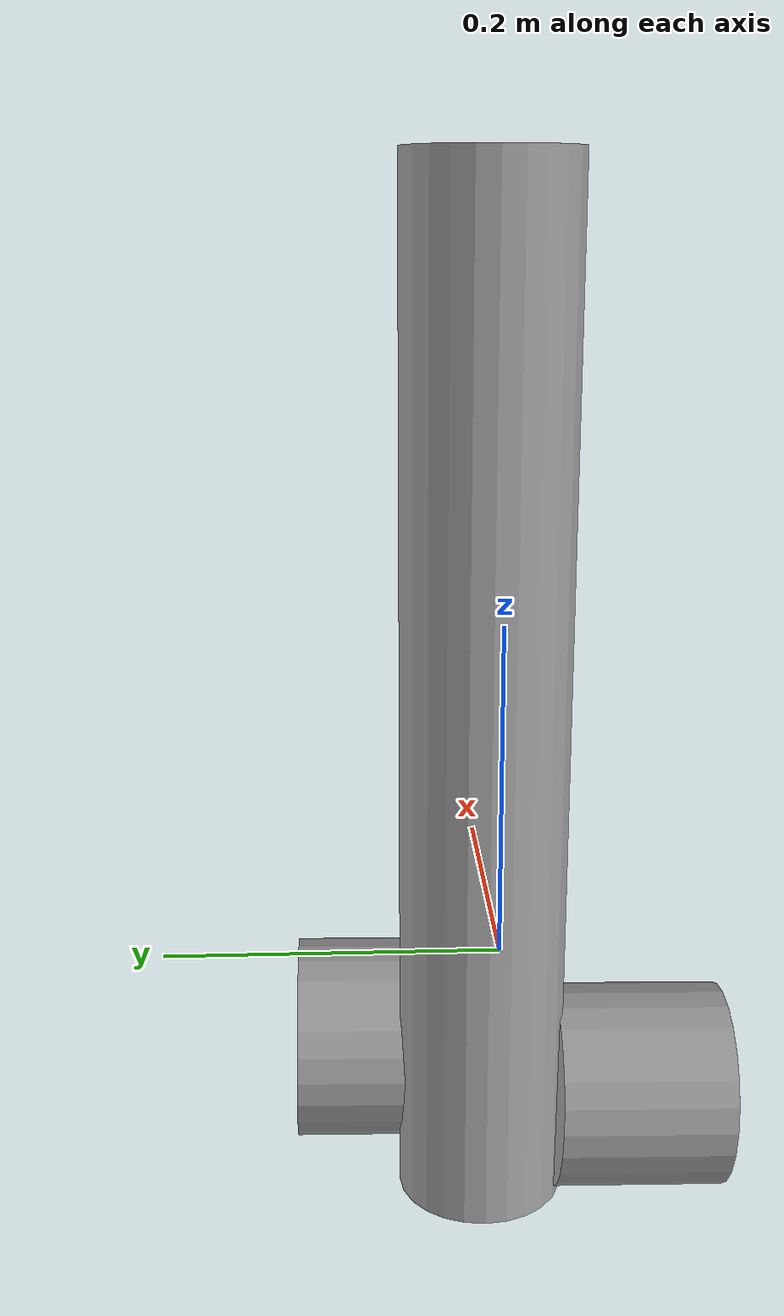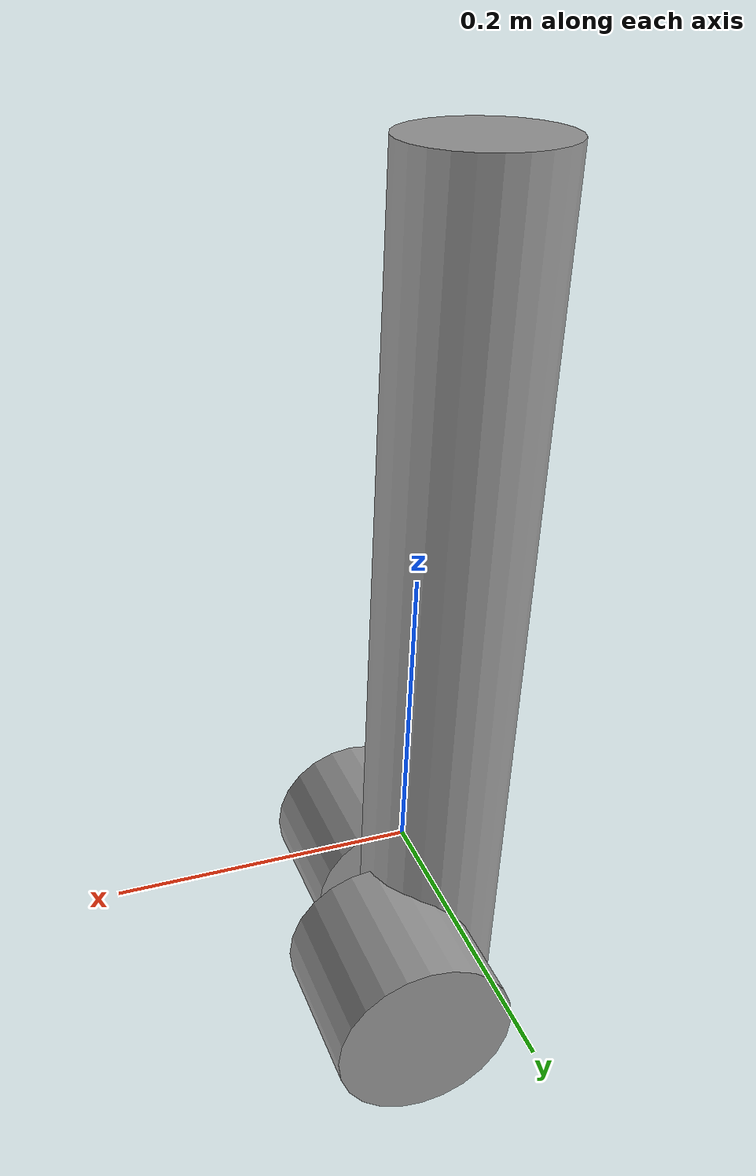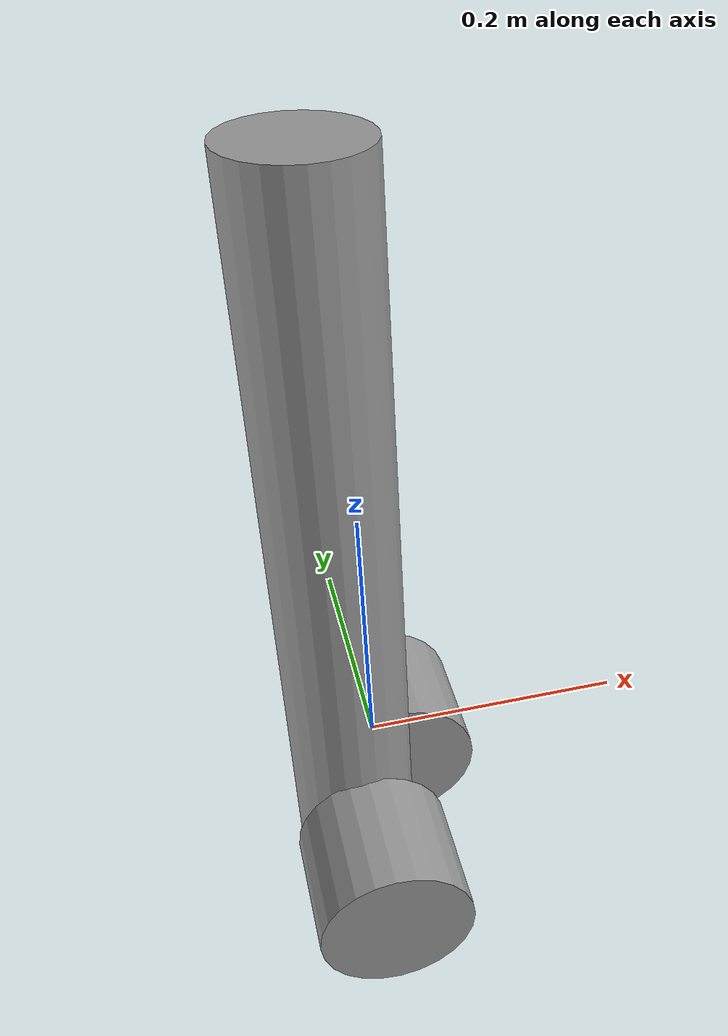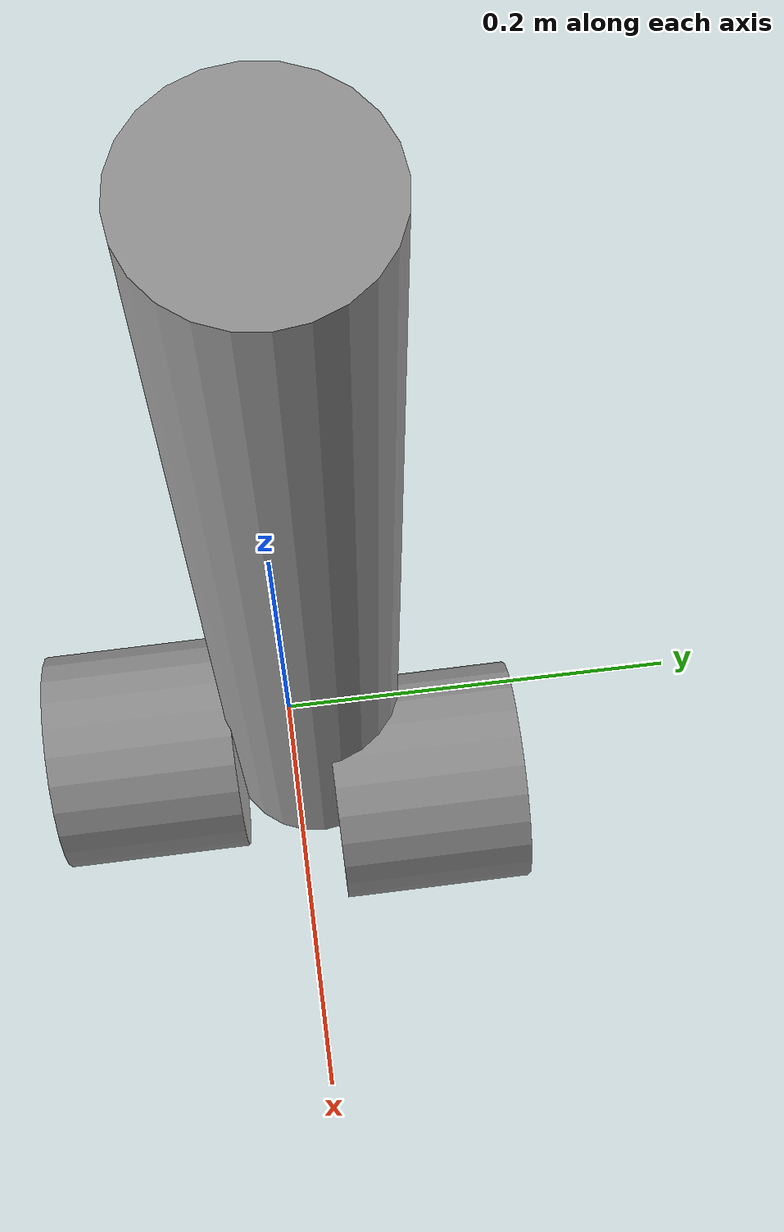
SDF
<?xml version='1.0'?>
<sdf version='1.7'>
  <model name='robo2'>
    <link name='link_3'>
      <inertial>
        <mass>0.00567123</mass>
        <inertia>
          <ixx>0.00017373</ixx>
          <ixy>0</ixy>
          <ixz>0</ixz>
          <iyy>0.00017373</iyy>
          <iyz>0</iyz>
          <izz>6.69614e-06</izz>
        </inertia>
        <pose>0 0 0 0 -0 0</pose>
      </inertial>
      <pose>-0.017192 0.011783 0.155468 0 -0 0</pose>
      <visual name='visual'>
        <pose>0 0 0 0 -0 0</pose>
        <geometry>
          <cylinder>
            <radius>0.0485946</radius>
            <length>0.600432</length>
          </cylinder>
        </geometry>
        <material>
          <lighting>1</lighting>
          <script>
            <uri>file://media/materials/scripts/gazebo.material</uri>
            <name>Gazebo/Grey</name>
          </script>
          <shader type='pixel'/>
          <emissive>0 0 0 1</emissive>
        </material>
        <transparency>0</transparency>
        <cast_shadows>1</cast_shadows>
      </visual>
      <collision name='collision'>
        <laser_retro>0</laser_retro>
        <max_contacts>10</max_contacts>
        <pose>0 0 0 0 -0 0</pose>
        <geometry>
          <cylinder>
            <radius>0.048595</radius>
            <length>0.600432</length>
          </cylinder>
        </geometry>
        <surface>
          <friction>
            <ode>
              <mu>1</mu>
              <mu2>1</mu2>
              <fdir1>0 0 0</fdir1>
              <slip1>0</slip1>
              <slip2>0</slip2>
            </ode>
            <torsional>
              <coefficient>1</coefficient>
              <patch_radius>0</patch_radius>
              <surface_radius>0</surface_radius>
              <use_patch_radius>1</use_patch_radius>
              <ode>
                <slip>0</slip>
              </ode>
            </torsional>
          </friction>
          <bounce>
            <restitution_coefficient>0</restitution_coefficient>
            <threshold>1e+06</threshold>
          </bounce>
          <contact>
            <collide_without_contact>0</collide_without_contact>
            <collide_without_contact_bitmask>1</collide_without_contact_bitmask>
            <collide_bitmask>1</collide_bitmask>
            <ode>
              <soft_cfm>0</soft_cfm>
              <soft_erp>0.2</soft_erp>
              <kp>1e+13</kp>
              <kd>1</kd>
              <max_vel>0.01</max_vel>
              <min_depth>0</min_depth>
            </ode>
            <bullet>
              <split_impulse>1</split_impulse>
              <split_impulse_penetration_threshold>-0.01</split_impulse_penetration_threshold>
              <soft_cfm>0</soft_cfm>
              <soft_erp>0.2</soft_erp>
              <kp>1e+13</kp>
              <kd>1</kd>
            </bullet>
          </contact>
        </surface>
      </collision>
    </link>
    <link name='link_5'>
      <inertial>
        <mass>0.00147871</mass>
        <inertia>
          <ixx>2.61689e-06</ixx>
          <ixy>0</ixy>
          <ixz>0</ixz>
          <iyy>2.61689e-06</iyy>
          <iyz>0</iyz>
          <izz>2.69202e-06</izz>
        </inertia>
        <pose>0 0 0 0 -0 0</pose>
      </inertial>
      <pose>-0.011319 -0.082734 -0.085035 -1.55556 0 0</pose>
      <visual name='visual'>
        <pose>0 0 0 0 -0 0</pose>
        <geometry>
          <cylinder>
            <radius>0.0603409</radius>
            <length>0.101555</length>
          </cylinder>
        </geometry>
        <material>
          <lighting>1</lighting>
          <script>
            <uri>file://media/materials/scripts/gazebo.material</uri>
            <name>Gazebo/Grey</name>
          </script>
          <shader type='pixel'/>
          <emissive>0 0 0 1</emissive>
        </material>
        <transparency>0</transparency>
        <cast_shadows>1</cast_shadows>
      </visual>
      <collision name='collision'>
        <laser_retro>0</laser_retro>
        <max_contacts>10</max_contacts>
        <pose>0 0 0 0 -0 0</pose>
        <geometry>
          <cylinder>
            <radius>0.060341</radius>
            <length>0.101555</length>
          </cylinder>
        </geometry>
        <surface>
          <friction>
            <ode>
              <mu>1</mu>
              <mu2>1</mu2>
              <fdir1>0 0 0</fdir1>
              <slip1>0</slip1>
              <slip2>0</slip2>
            </ode>
            <torsional>
              <coefficient>1</coefficient>
              <patch_radius>0</patch_radius>
              <surface_radius>0</surface_radius>
              <use_patch_radius>1</use_patch_radius>
              <ode>
                <slip>0</slip>
              </ode>
            </torsional>
          </friction>
          <bounce>
            <restitution_coefficient>0</restitution_coefficient>
            <threshold>1e+06</threshold>
          </bounce>
          <contact>
            <collide_without_contact>0</collide_without_contact>
            <collide_without_contact_bitmask>1</collide_without_contact_bitmask>
            <collide_bitmask>1</collide_bitmask>
            <ode>
              <soft_cfm>0</soft_cfm>
              <soft_erp>0.2</soft_erp>
              <kp>1e+13</kp>
              <kd>1</kd>
              <max_vel>0.01</max_vel>
              <min_depth>0</min_depth>
            </ode>
            <bullet>
              <split_impulse>1</split_impulse>
              <split_impulse_penetration_threshold>-0.01</split_impulse_penetration_threshold>
              <soft_cfm>0</soft_cfm>
              <soft_erp>0.2</soft_erp>
              <kp>1e+13</kp>
              <kd>1</kd>
            </bullet>
          </contact>
        </surface>
      </collision>
    </link>
    <link name='link_5_clone'>
      <inertial>
        <mass>0.00147871</mass>
        <inertia>
          <ixx>2.61689e-06</ixx>
          <ixy>0</ixy>
          <ixz>0</ixz>
          <iyy>2.61689e-06</iyy>
          <iyz>0</iyz>
          <izz>2.69202e-06</izz>
        </inertia>
        <pose>0 0 0 0 -0 0</pose>
      </inertial>
      <pose>0.028511 0.070951 -0.070433 -1.55556 0 0</pose>
      <visual name='visual'>
        <pose>0 0 0 0 -0 0</pose>
        <geometry>
          <cylinder>
            <radius>0.0603409</radius>
            <length>0.101555</length>
          </cylinder>
        </geometry>
        <material>
          <lighting>1</lighting>
          <script>
            <uri>file://media/materials/scripts/gazebo.material</uri>
            <name>Gazebo/Grey</name>
          </script>
          <shader type='pixel'/>
          <emissive>0 0 0 1</emissive>
        </material>
        <transparency>0</transparency>
        <cast_shadows>1</cast_shadows>
      </visual>
      <collision name='collision'>
        <laser_retro>0</laser_retro>
        <max_contacts>10</max_contacts>
        <pose>0 0 0 0 -0 0</pose>
        <geometry>
          <cylinder>
            <radius>0.060341</radius>
            <length>0.101555</length>
          </cylinder>
        </geometry>
        <surface>
          <friction>
            <ode>
              <mu>1</mu>
              <mu2>1</mu2>
              <fdir1>0 0 0</fdir1>
              <slip1>0</slip1>
              <slip2>0</slip2>
            </ode>
            <torsional>
              <coefficient>1</coefficient>
              <patch_radius>0</patch_radius>
              <surface_radius>0</surface_radius>
              <use_patch_radius>1</use_patch_radius>
              <ode>
                <slip>0</slip>
              </ode>
            </torsional>
          </friction>
          <bounce>
            <restitution_coefficient>0</restitution_coefficient>
            <threshold>1e+06</threshold>
          </bounce>
          <contact>
            <collide_without_contact>0</collide_without_contact>
            <collide_without_contact_bitmask>1</collide_without_contact_bitmask>
            <collide_bitmask>1</collide_bitmask>
            <ode>
              <soft_cfm>0</soft_cfm>
              <soft_erp>0.2</soft_erp>
              <kp>1e+13</kp>
              <kd>1</kd>
              <max_vel>0.01</max_vel>
              <min_depth>0</min_depth>
            </ode>
            <bullet>
              <split_impulse>1</split_impulse>
              <split_impulse_penetration_threshold>-0.01</split_impulse_penetration_threshold>
              <soft_cfm>0</soft_cfm>
              <soft_erp>0.2</soft_erp>
              <kp>1e+13</kp>
              <kd>1</kd>
            </bullet>
          </contact>
        </surface>
      </collision>
    </link>
    <joint name='link_3_JOINT_2' type='revolute'>
      <parent>link_3</parent>
      <child>link_5</child>
      <pose>0 0 0 0 -0 0</pose>
      <axis>
        <xyz>0 0 1</xyz>
        <limit>
          <lower>-1.79769e+308</lower>
          <upper>1.79769e+308</upper>
          <effort>-1</effort>
          <velocity>-1</velocity>
        </limit>
        <dynamics>
          <spring_reference>0</spring_reference>
          <spring_stiffness>0</spring_stiffness>
          <damping>0</damping>
        </dynamics>
      </axis>
      <physics>
        <ode>
          <limit>
            <cfm>0</cfm>
            <erp>0.2</erp>
          </limit>
          <suspension>
            <cfm>0</cfm>
            <erp>0.2</erp>
          </suspension>
        </ode>
      </physics>
    </joint>
    <joint name='link_3_JOINT_3' type='revolute'>
      <parent>link_3</parent>
      <child>link_5_clone</child>
      <pose>0 0 0 0 -0 0</pose>
      <axis>
        <xyz>0 0 1</xyz>
        <limit>
          <lower>-1.79769e+308</lower>
          <upper>1.79769e+308</upper>
          <effort>-1</effort>
          <velocity>-1</velocity>
        </limit>
        <dynamics>
          <spring_reference>0</spring_reference>
          <spring_stiffness>0</spring_stiffness>
          <damping>0</damping>
        </dynamics>
      </axis>
      <physics>
        <ode>
          <limit>
            <cfm>0</cfm>
            <erp>0.2</erp>
          </limit>
          <suspension>
            <cfm>0</cfm>
            <erp>0.2</erp>
          </suspension>
        </ode>
      </physics>
    </joint>
    <static>0</static>
    <allow_auto_disable>1</allow_auto_disable>
  </model>
</sdf>
